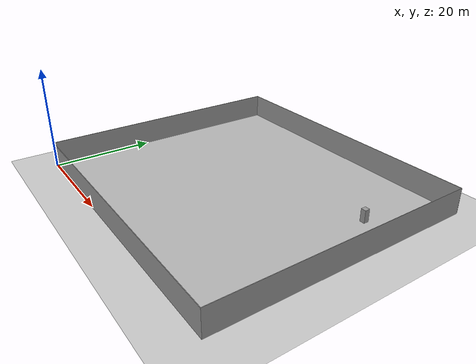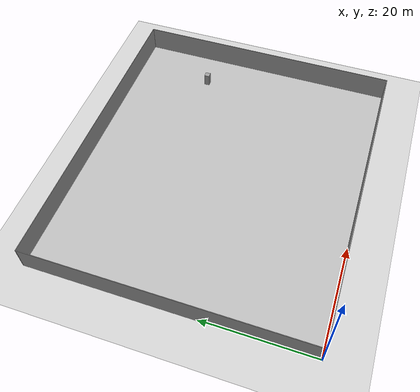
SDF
<sdf version="1.6">
 <world name="default">
  <light name="sun" type="directional">
   <pose>0 0 10 0 -0 0</pose>
   <diffuse>0.8 0.8 0.8 1</diffuse>
   <specular>0.2 0.2 0.2 1</specular>
   <attenuation>
    <range>1000</range>
    <constant>0.9</constant>
    <linear>0.01</linear>
    <quadratic>0.001</quadratic>
   </attenuation>
   <direction>-0.5 0.1 -0.9</direction>
  </light>
  <model name="ground_plane">
   <static>1</static>
   <link name="link">
    <collision name="collision">
     <geometry><plane><normal>0 0 1</normal><size>100 100</size></plane></geometry>
     <surface><friction><ode><mu>100</mu><mu2>50</mu2></ode></friction></surface>
    </collision>
    <visual name="visual">
     <cast_shadows>0</cast_shadows>
     <geometry><plane><normal>0 0 1</normal><size>100 100</size></plane></geometry>
     <material>
      <script><uri>file://media/materials/scripts/gazebo.material</uri><name>Gazebo/Grey</name></script>
     </material>
    </visual>
   </link>
  </model>
  <gravity>0 0 -9.8</gravity>
  <magnetic_field>6e-06 2.3e-05 -4.2e-05</magnetic_field>
  <atmosphere type="adiabatic"/>
  <physics name="default_physics" default="0" type="ode">
   <max_step_size>0.001</max_step_size>
   <real_time_factor>1</real_time_factor>
   <real_time_update_rate>1000</real_time_update_rate>
  </physics>
  <scene><ambient>0.4 0.4 0.4 1</ambient><background>0.7 0.7 0.7 1</background><shadows>1</shadows></scene>
  <spherical_coordinates>
   <surface_model>EARTH_WGS84</surface_model>
   <latitude_deg>0</latitude_deg>
   <longitude_deg>0</longitude_deg>
   <elevation>0</elevation>
   <heading_deg>0</heading_deg>
  </spherical_coordinates>
  <model name="Simple_parking_space">
   <static>1</static>
   <link name="link">
    <collision name="collision">
     <geometry><plane><normal>0 0 1</normal><size>57.7 50.8</size></plane></geometry>
     <surface><friction><ode><mu>100</mu><mu2>50</mu2></ode></friction></surface>
    </collision>
    <visual name="visual">
     <geometry><plane><normal>0 0 1</normal><size>57.7 50.8</size></plane></geometry>
     <material>
      <script>
       <uri>model://simple_parking_space/materials/scripts</uri>
       <uri>model://simple_parking_space/materials/textures</uri>
       <name>ParkingSpace/simple</name>
      </script>
     </material>
    </visual>
   </link>
   <pose>28.8648 25.4001 0 0 -0 0</pose>
  </model>
  <model name="parking_wall">
   <pose>28.8465 25.3958 0 0 -0 0</pose>
   <link name="Wall_11">
    <collision name="Wall_11_Collision">
     <geometry><box><size>57.9 0.1 5</size></box></geometry>
     <pose>0 0 2.5 0 -0 0</pose>
    </collision>
    <visual name="Wall_11_Visual">
     <pose>0 0 2.5 0 -0 0</pose>
     <geometry><box><size>57.9 0.1 5</size></box></geometry>
     <material>
      <script><uri>file://media/materials/scripts/gazebo.material</uri><name>Gazebo/Grey</name></script>
      <ambient>1 1 1 1</ambient>
     </material>
     <meta><layer>0</layer></meta>
    </visual>
    <pose>-0 -25.45 0 0 -0 0</pose>
   </link>
   <link name="Wall_12">
    <collision name="Wall_12_Collision">
     <geometry><box><size>51 0.1 5</size></box></geometry>
     <pose>0 0 2.5 0 -0 0</pose>
    </collision>
    <visual name="Wall_12_Visual">
     <pose>0 0 2.5 0 -0 0</pose>
     <geometry><box><size>51 0.1 5</size></box></geometry>
     <material>
      <script><uri>file://media/materials/scripts/gazebo.material</uri><name>Gazebo/Grey</name></script>
      <ambient>1 1 1 1</ambient>
     </material>
     <meta><layer>0</layer></meta>
    </visual>
    <pose>28.9 0 0 0 -0 1.5708</pose>
   </link>
   <link name="Wall_13">
    <collision name="Wall_13_Collision">
     <geometry><box><size>57.9 0.1 5</size></box></geometry>
     <pose>0 0 2.5 0 -0 0</pose>
    </collision>
    <visual name="Wall_13_Visual">
     <pose>0 0 2.5 0 -0 0</pose>
     <geometry><box><size>57.9 0.1 5</size></box></geometry>
     <material>
      <script><uri>file://media/materials/scripts/gazebo.material</uri><name>Gazebo/Grey</name></script>
      <ambient>1 1 1 1</ambient>
     </material>
     <meta><layer>0</layer></meta>
    </visual>
    <pose>-0 25.45 0 0 -0 3.14159</pose>
   </link>
   <link name="Wall_14">
    <collision name="Wall_14_Collision">
     <geometry><box><size>51 0.1 5</size></box></geometry>
     <pose>0 0 2.5 0 -0 0</pose>
    </collision>
    <visual name="Wall_14_Visual">
     <pose>0 0 2.5 0 -0 0</pose>
     <geometry><box><size>51 0.1 5</size></box></geometry>
     <material>
      <script><uri>file://media/materials/scripts/gazebo.material</uri><name>Gazebo/Grey</name></script>
      <ambient>1 1 1 1</ambient>
     </material>
     <meta><layer>0</layer></meta>
    </visual>
    <pose>-28.9 0 0 0 -0 -1.5708</pose>
   </link>
   <static>1</static>
  </model>
  <model name="1*1*2_5">
   <link name="link">
    <inertial>
     <mass>1</mass>
     <inertia>
      <ixx>0.166667</ixx>
      <ixy>0</ixy>
      <ixz>0</ixz>
      <iyy>0.166667</iyy>
      <iyz>0</iyz>
      <izz>0.166667</izz>
     </inertia>
    </inertial>
    <visual name="visual">
     <geometry><box><size>1 1 2.5</size></box></geometry>
     <material>
      <script><name>Gazebo/Grey</name><uri>file://media/materials/scripts/gazebo.material</uri></script>
      <shader type="pixel"><normal_map>__default__</normal_map></shader>
      <ambient>0.3 0.3 0.3 1</ambient>
      <diffuse>0.7 0.7 0.7 1</diffuse>
      <specular>0.01 0.01 0.01 1</specular>
      <emissive>0 0 0 1</emissive>
     </material>
    </visual>
    <collision name="collision">
     <geometry><box><size>1 1 2.5</size></box></geometry>
     <surface>
      <friction>
       <ode><mu>1</mu><mu2>1</mu2><fdir1>0 0 0</fdir1><slip1>0</slip1><slip2>0</slip2></ode>
       <torsional>
        <coefficient>1</coefficient>
        <patch_radius>0</patch_radius>
        <surface_radius>0</surface_radius>
        <use_patch_radius>1</use_patch_radius>
        <ode><slip>0</slip></ode>
       </torsional>
      </friction>
      <bounce><restitution_coefficient>0</restitution_coefficient><threshold>1e+06</threshold></bounce>
      <contact>
       <collide_without_contact>0</collide_without_contact>
       <collide_without_contact_bitmask>1</collide_without_contact_bitmask>
       <collide_bitmask>1</collide_bitmask>
       <ode>
        <soft_cfm>0</soft_cfm>
        <soft_erp>0.2</soft_erp>
        <kp>1e+13</kp>
        <kd>1</kd>
        <max_vel>0.01</max_vel>
        <min_depth>0</min_depth>
       </ode>
       <bullet>
        <split_impulse>1</split_impulse>
        <split_impulse_penetration_threshold>-0.01</split_impulse_penetration_threshold>
        <soft_cfm>0</soft_cfm>
        <soft_erp>0.2</soft_erp>
        <kp>1e+13</kp>
        <kd>1</kd>
       </bullet>
      </contact>
     </surface>
    </collision>
   </link>
   <static>0</static>
   <pose>50.4795 35.8631 1.25 1e-06 1e-06 -2e-06</pose>
  </model>
 </world>
</sdf>
